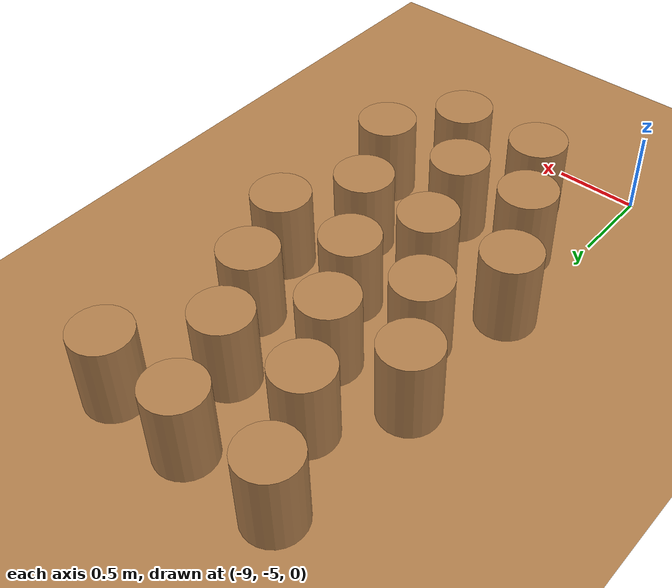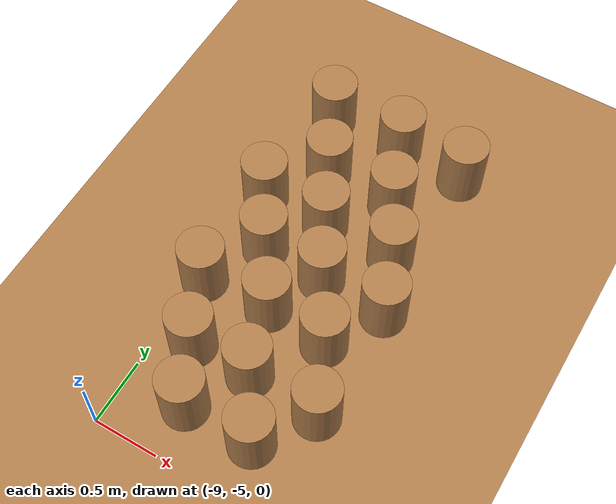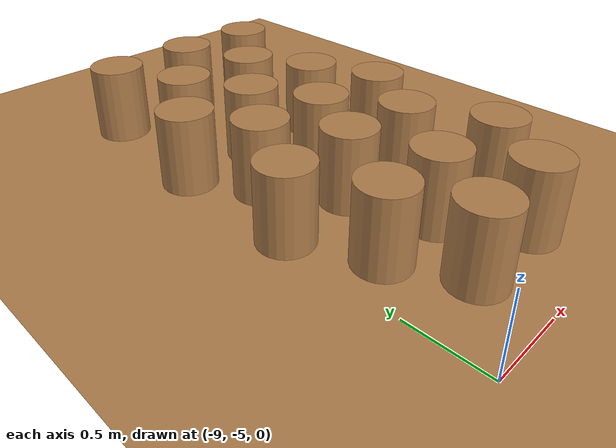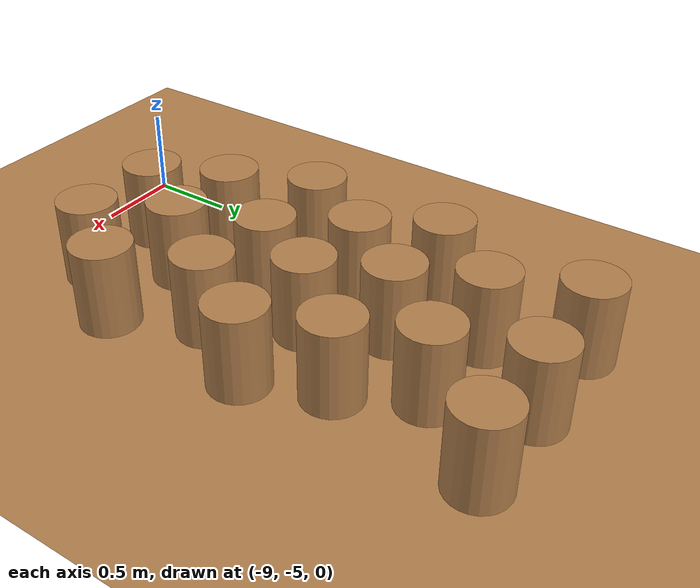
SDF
<sdf version="1.6">
 <world name="default">
  <model name="ground_plane">
   <pose>1.25 -2.75 0 0 -0 0</pose>
   <static>1</static>
   <link name="link">
    <collision name="collision">
     <geometry><plane><normal>0 0 1</normal><size>100 100</size></plane></geometry>
     <surface><friction><ode><mu>100</mu><mu2>50</mu2></ode></friction></surface>
    </collision>
    <visual name="visual">
     <cast_shadows>0</cast_shadows>
     <geometry><plane><normal>0 0 1</normal><size>32 34.75</size></plane></geometry>
     <material>
      <script><uri>file://media/materials/scripts/gazebo.material</uri><name>Gazebo/WoodFloor</name></script>
     </material>
    </visual>
   </link>
  </model>
  <model name="unit_cylinder_11_clone_clone_5_clone_32">
   <pose>-7.98529 -4.60252 0.25 0 0 -1.2e-05</pose>
   <static>1</static>
   <link name="link">
    <inertial>
     <mass>1</mass>
     <inertia><ixx>0.145833</ixx><ixy>0</ixy><ixz>0</ixz><iyy>0.145833</iyy><iyz>0</iyz><izz>0.125</izz></inertia>
    </inertial>
    <collision name="collision">
     <geometry><cylinder><radius>0.175</radius><length>0.5</length></cylinder></geometry>
    </collision>
    <visual name="visual">
     <geometry><cylinder><radius>0.175</radius><length>0.5</length></cylinder></geometry>
     <material>
      <script><name>Gazebo/Wood</name><uri>file://media/materials/scripts/gazebo.material</uri></script>
     </material>
    </visual>
   </link>
  </model>
  <model name="unit_cylinder_11_clone_clone_5_clone_40">
   <pose>-8.73308 -4.18235 0.25 0 0 -1.2e-05</pose>
   <static>1</static>
   <link name="link">
    <inertial>
     <mass>1</mass>
     <inertia><ixx>0.145833</ixx><ixy>0</ixy><ixz>0</ixz><iyy>0.145833</iyy><iyz>0</iyz><izz>0.125</izz></inertia>
    </inertial>
    <collision name="collision">
     <geometry><cylinder><radius>0.175</radius><length>0.5</length></cylinder></geometry>
    </collision>
    <visual name="visual">
     <geometry><cylinder><radius>0.175</radius><length>0.5</length></cylinder></geometry>
     <material>
      <script><name>Gazebo/Wood</name><uri>file://media/materials/scripts/gazebo.material</uri></script>
     </material>
    </visual>
   </link>
  </model>
  <model name="unit_cylinder_11_clone_clone_5_clone_41">
   <pose>-8.26483 -4.18016 0.25 0 0 -1.2e-05</pose>
   <static>1</static>
   <link name="link">
    <inertial>
     <mass>1</mass>
     <inertia><ixx>0.145833</ixx><ixy>0</ixy><ixz>0</ixz><iyy>0.145833</iyy><iyz>0</iyz><izz>0.125</izz></inertia>
    </inertial>
    <collision name="collision">
     <geometry><cylinder><radius>0.175</radius><length>0.5</length></cylinder></geometry>
    </collision>
    <visual name="visual">
     <geometry><cylinder><radius>0.175</radius><length>0.5</length></cylinder></geometry>
     <material>
      <script><name>Gazebo/Wood</name><uri>file://media/materials/scripts/gazebo.material</uri></script>
     </material>
    </visual>
   </link>
  </model>
  <model name="unit_cylinder_11_clone_clone_5_clone_42">
   <pose>-7.70525 -4.20677 0.25 0 0 -1.2e-05</pose>
   <static>1</static>
   <link name="link">
    <inertial>
     <mass>1</mass>
     <inertia><ixx>0.145833</ixx><ixy>0</ixy><ixz>0</ixz><iyy>0.145833</iyy><iyz>0</iyz><izz>0.125</izz></inertia>
    </inertial>
    <collision name="collision">
     <geometry><cylinder><radius>0.175</radius><length>0.5</length></cylinder></geometry>
    </collision>
    <visual name="visual">
     <geometry><cylinder><radius>0.175</radius><length>0.5</length></cylinder></geometry>
     <material>
      <script><name>Gazebo/Wood</name><uri>file://media/materials/scripts/gazebo.material</uri></script>
     </material>
    </visual>
   </link>
  </model>
  <model name="unit_cylinder_11_clone_clone_5_clone_48">
   <pose>-8.95322 -3.69995 0.25 0 0 -1.2e-05</pose>
   <static>1</static>
   <link name="link">
    <inertial>
     <mass>1</mass>
     <inertia><ixx>0.145833</ixx><ixy>0</ixy><ixz>0</ixz><iyy>0.145833</iyy><iyz>0</iyz><izz>0.125</izz></inertia>
    </inertial>
    <collision name="collision">
     <geometry><cylinder><radius>0.175</radius><length>0.5</length></cylinder></geometry>
    </collision>
    <visual name="visual">
     <geometry><cylinder><radius>0.175</radius><length>0.5</length></cylinder></geometry>
     <material>
      <script><name>Gazebo/Wood</name><uri>file://media/materials/scripts/gazebo.material</uri></script>
     </material>
    </visual>
   </link>
  </model>
  <model name="unit_cylinder_11_clone_clone_5_clone_49">
   <pose>-8.42304 -3.67449 0.25 0 0 -1.2e-05</pose>
   <static>1</static>
   <link name="link">
    <inertial>
     <mass>1</mass>
     <inertia><ixx>0.145833</ixx><ixy>0</ixy><ixz>0</ixz><iyy>0.145833</iyy><iyz>0</iyz><izz>0.125</izz></inertia>
    </inertial>
    <collision name="collision">
     <geometry><cylinder><radius>0.175</radius><length>0.5</length></cylinder></geometry>
    </collision>
    <visual name="visual">
     <geometry><cylinder><radius>0.175</radius><length>0.5</length></cylinder></geometry>
     <material>
      <script><name>Gazebo/Wood</name><uri>file://media/materials/scripts/gazebo.material</uri></script>
     </material>
    </visual>
   </link>
  </model>
  <model name="unit_cylinder_11_clone_clone_5_clone_50">
   <pose>-7.93769 -3.71085 0.25 0 0 -1.2e-05</pose>
   <static>1</static>
   <link name="link">
    <inertial>
     <mass>1</mass>
     <inertia><ixx>0.145833</ixx><ixy>0</ixy><ixz>0</ixz><iyy>0.145833</iyy><iyz>0</iyz><izz>0.125</izz></inertia>
    </inertial>
    <collision name="collision">
     <geometry><cylinder><radius>0.175</radius><length>0.5</length></cylinder></geometry>
    </collision>
    <visual name="visual">
     <geometry><cylinder><radius>0.175</radius><length>0.5</length></cylinder></geometry>
     <material>
      <script><name>Gazebo/Wood</name><uri>file://media/materials/scripts/gazebo.material</uri></script>
     </material>
    </visual>
   </link>
  </model>
  <model name="unit_cylinder_11_clone_clone_5_clone_58">
   <pose>-8.71311 -3.2439 0.25 0 0 -1.2e-05</pose>
   <static>1</static>
   <link name="link">
    <inertial>
     <mass>1</mass>
     <inertia><ixx>0.145833</ixx><ixy>0</ixy><ixz>0</ixz><iyy>0.145833</iyy><iyz>0</iyz><izz>0.125</izz></inertia>
    </inertial>
    <collision name="collision">
     <geometry><cylinder><radius>0.175</radius><length>0.5</length></cylinder></geometry>
    </collision>
    <visual name="visual">
     <geometry><cylinder><radius>0.175</radius><length>0.5</length></cylinder></geometry>
     <material>
      <script><name>Gazebo/Wood</name><uri>file://media/materials/scripts/gazebo.material</uri></script>
     </material>
    </visual>
   </link>
  </model>
  <model name="unit_cylinder_11_clone_clone_5_clone_59">
   <pose>-8.21804 -3.26196 0.25 0 0 -1.2e-05</pose>
   <static>1</static>
   <link name="link">
    <inertial>
     <mass>1</mass>
     <inertia><ixx>0.145833</ixx><ixy>0</ixy><ixz>0</ixz><iyy>0.145833</iyy><iyz>0</iyz><izz>0.125</izz></inertia>
    </inertial>
    <collision name="collision">
     <geometry><cylinder><radius>0.175</radius><length>0.5</length></cylinder></geometry>
    </collision>
    <visual name="visual">
     <geometry><cylinder><radius>0.175</radius><length>0.5</length></cylinder></geometry>
     <material>
      <script><name>Gazebo/Wood</name><uri>file://media/materials/scripts/gazebo.material</uri></script>
     </material>
    </visual>
   </link>
  </model>
  <model name="unit_cylinder_11_clone_clone_5_clone_60">
   <pose>-7.69001 -3.28747 0.25 0 0 -1.2e-05</pose>
   <static>1</static>
   <link name="link">
    <inertial>
     <mass>1</mass>
     <inertia><ixx>0.145833</ixx><ixy>0</ixy><ixz>0</ixz><iyy>0.145833</iyy><iyz>0</iyz><izz>0.125</izz></inertia>
    </inertial>
    <collision name="collision">
     <geometry><cylinder><radius>0.175</radius><length>0.5</length></cylinder></geometry>
    </collision>
    <visual name="visual">
     <geometry><cylinder><radius>0.175</radius><length>0.5</length></cylinder></geometry>
     <material>
      <script><name>Gazebo/Wood</name><uri>file://media/materials/scripts/gazebo.material</uri></script>
     </material>
    </visual>
   </link>
  </model>
  <model name="unit_cylinder_11_clone_clone_5_clone_52_clone_4">
   <pose>-8.95297 -2.84617 0.25 0 0 -1.2e-05</pose>
   <static>1</static>
   <link name="link">
    <inertial>
     <mass>1</mass>
     <inertia><ixx>0.145833</ixx><ixy>0</ixy><ixz>0</ixz><iyy>0.145833</iyy><iyz>0</iyz><izz>0.125</izz></inertia>
    </inertial>
    <collision name="collision">
     <geometry><cylinder><radius>0.175</radius><length>0.5</length></cylinder></geometry>
    </collision>
    <visual name="visual">
     <geometry><cylinder><radius>0.175</radius><length>0.5</length></cylinder></geometry>
     <material>
      <script><name>Gazebo/Wood</name><uri>file://media/materials/scripts/gazebo.material</uri></script>
     </material>
    </visual>
   </link>
  </model>
  <model name="unit_cylinder_11_clone_clone_5_clone_52_clone_5">
   <pose>-8.42942 -2.84405 0.25 0 0 -1.2e-05</pose>
   <static>1</static>
   <link name="link">
    <inertial>
     <mass>1</mass>
     <inertia><ixx>0.145833</ixx><ixy>0</ixy><ixz>0</ixz><iyy>0.145833</iyy><iyz>0</iyz><izz>0.125</izz></inertia>
    </inertial>
    <collision name="collision">
     <geometry><cylinder><radius>0.175</radius><length>0.5</length></cylinder></geometry>
    </collision>
    <visual name="visual">
     <geometry><cylinder><radius>0.175</radius><length>0.5</length></cylinder></geometry>
     <material>
      <script><name>Gazebo/Wood</name><uri>file://media/materials/scripts/gazebo.material</uri></script>
     </material>
    </visual>
   </link>
  </model>
  <model name="unit_cylinder_11_clone_clone_5_clone_52_clone_6">
   <pose>-7.87212 -2.8437 0.25 0 0 -1.2e-05</pose>
   <static>1</static>
   <link name="link">
    <inertial>
     <mass>1</mass>
     <inertia><ixx>0.145833</ixx><ixy>0</ixy><ixz>0</ixz><iyy>0.145833</iyy><iyz>0</iyz><izz>0.125</izz></inertia>
    </inertial>
    <collision name="collision">
     <geometry><cylinder><radius>0.175</radius><length>0.5</length></cylinder></geometry>
    </collision>
    <visual name="visual">
     <geometry><cylinder><radius>0.175</radius><length>0.5</length></cylinder></geometry>
     <material>
      <script><name>Gazebo/Wood</name><uri>file://media/materials/scripts/gazebo.material</uri></script>
     </material>
    </visual>
   </link>
  </model>
  <model name="unit_cylinder_11_clone_clone_5_clone_52_clone_13">
   <pose>-8.64442 -2.41654 0.25 0 0 -1.2e-05</pose>
   <static>1</static>
   <link name="link">
    <inertial>
     <mass>1</mass>
     <inertia><ixx>0.145833</ixx><ixy>0</ixy><ixz>0</ixz><iyy>0.145833</iyy><iyz>0</iyz><izz>0.125</izz></inertia>
    </inertial>
    <collision name="collision">
     <geometry><cylinder><radius>0.175</radius><length>0.5</length></cylinder></geometry>
    </collision>
    <visual name="visual">
     <geometry><cylinder><radius>0.175</radius><length>0.5</length></cylinder></geometry>
     <material>
      <script><name>Gazebo/Wood</name><uri>file://media/materials/scripts/gazebo.material</uri></script>
     </material>
    </visual>
   </link>
  </model>
  <model name="unit_cylinder_11_clone_clone_5_clone_52_clone_14">
   <pose>-8.09267 -2.43046 0.25 0 0 -1.2e-05</pose>
   <static>1</static>
   <link name="link">
    <inertial>
     <mass>1</mass>
     <inertia><ixx>0.145833</ixx><ixy>0</ixy><ixz>0</ixz><iyy>0.145833</iyy><iyz>0</iyz><izz>0.125</izz></inertia>
    </inertial>
    <collision name="collision">
     <geometry><cylinder><radius>0.175</radius><length>0.5</length></cylinder></geometry>
    </collision>
    <visual name="visual">
     <geometry><cylinder><radius>0.175</radius><length>0.5</length></cylinder></geometry>
     <material>
      <script><name>Gazebo/Wood</name><uri>file://media/materials/scripts/gazebo.material</uri></script>
     </material>
    </visual>
   </link>
  </model>
  <model name="unit_cylinder_11_clone_clone_5_clone_52_clone_21">
   <pose>-8.86745 -1.94936 0.25 0 0 -1.2e-05</pose>
   <static>1</static>
   <link name="link">
    <inertial>
     <mass>1</mass>
     <inertia><ixx>0.145833</ixx><ixy>0</ixy><ixz>0</ixz><iyy>0.145833</iyy><iyz>0</iyz><izz>0.125</izz></inertia>
    </inertial>
    <collision name="collision">
     <geometry><cylinder><radius>0.175</radius><length>0.5</length></cylinder></geometry>
    </collision>
    <visual name="visual">
     <geometry><cylinder><radius>0.175</radius><length>0.5</length></cylinder></geometry>
     <material>
      <script><name>Gazebo/Wood</name><uri>file://media/materials/scripts/gazebo.material</uri></script>
     </material>
    </visual>
   </link>
  </model>
  <model name="unit_cylinder_11_clone_clone_5_clone_52_clone_22">
   <pose>-8.27594 -1.94595 0.25 0 0 -1.2e-05</pose>
   <static>1</static>
   <link name="link">
    <inertial>
     <mass>1</mass>
     <inertia><ixx>0.145833</ixx><ixy>0</ixy><ixz>0</ixz><iyy>0.145833</iyy><iyz>0</iyz><izz>0.125</izz></inertia>
    </inertial>
    <collision name="collision">
     <geometry><cylinder><radius>0.175</radius><length>0.5</length></cylinder></geometry>
    </collision>
    <visual name="visual">
     <geometry><cylinder><radius>0.175</radius><length>0.5</length></cylinder></geometry>
     <material>
      <script><name>Gazebo/Wood</name><uri>file://media/materials/scripts/gazebo.material</uri></script>
     </material>
    </visual>
   </link>
  </model>
  <model name="unit_cylinder_11_clone_clone_5_clone_52_clone_23">
   <pose>-7.73886 -1.96393 0.25 0 0 -1.2e-05</pose>
   <static>1</static>
   <link name="link">
    <inertial>
     <mass>1</mass>
     <inertia><ixx>0.145833</ixx><ixy>0</ixy><ixz>0</ixz><iyy>0.145833</iyy><iyz>0</iyz><izz>0.125</izz></inertia>
    </inertial>
    <collision name="collision">
     <geometry><cylinder><radius>0.175</radius><length>0.5</length></cylinder></geometry>
    </collision>
    <visual name="visual">
     <geometry><cylinder><radius>0.175</radius><length>0.5</length></cylinder></geometry>
     <material>
      <script><name>Gazebo/Wood</name><uri>file://media/materials/scripts/gazebo.material</uri></script>
     </material>
    </visual>
   </link>
  </model>
  <model name="unit_cylinder_11_clone_clone_5_clone_32_clone">
   <pose>-8.52087 -4.60528 0.25 0 0 -1.2e-05</pose>
   <static>1</static>
   <link name="link">
    <inertial>
     <mass>1</mass>
     <inertia><ixx>0.145833</ixx><ixy>0</ixy><ixz>0</ixz><iyy>0.145833</iyy><iyz>0</iyz><izz>0.125</izz></inertia>
    </inertial>
    <collision name="collision">
     <geometry><cylinder><radius>0.175</radius><length>0.5</length></cylinder></geometry>
    </collision>
    <visual name="visual">
     <geometry><cylinder><radius>0.175</radius><length>0.5</length></cylinder></geometry>
     <material>
      <script><name>Gazebo/Wood</name><uri>file://media/materials/scripts/gazebo.material</uri></script>
     </material>
    </visual>
   </link>
  </model>
 </world>
</sdf>
